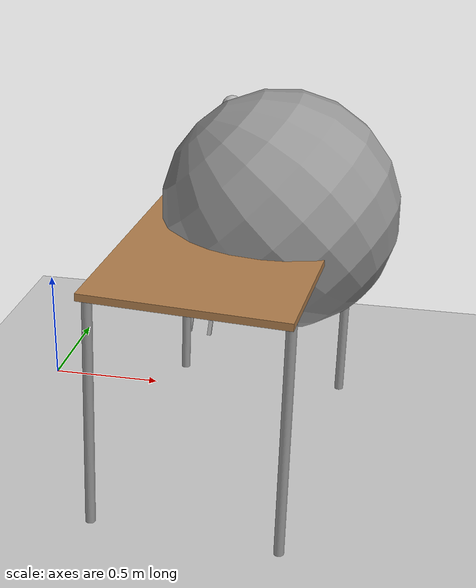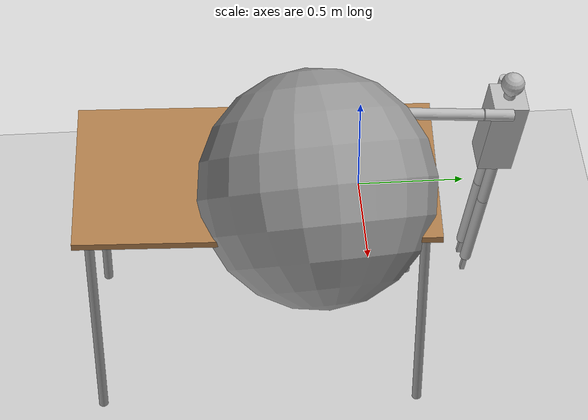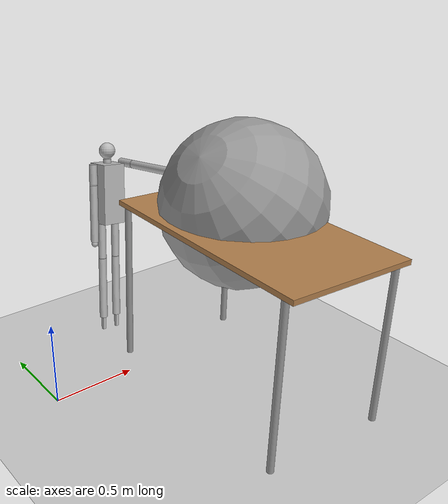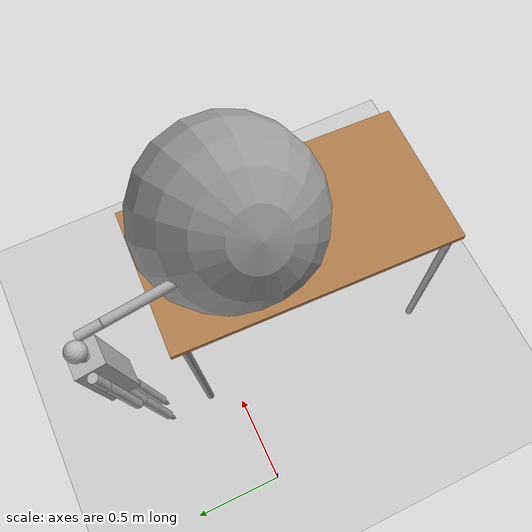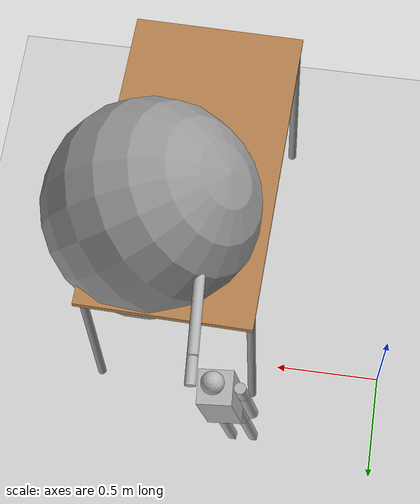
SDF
<sdf version="1.6">
 <world name="default">
  <light name="sun" type="directional">
   <pose>0 0 10 0 -0 0</pose>
   <diffuse>0.8 0.8 0.8 1</diffuse>
   <specular>0.2 0.2 0.2 1</specular>
   <attenuation>
    <range>1000</range>
    <constant>0.9</constant>
    <linear>0.01</linear>
    <quadratic>0.001</quadratic>
   </attenuation>
   <direction>-0.5 0.1 -0.9</direction>
  </light>
  <model name="ground_plane">
   <static>1</static>
   <link name="link">
    <collision name="collision">
     <geometry><plane><normal>0 0 1</normal><size>100 100</size></plane></geometry>
     <surface><friction><ode><mu>100</mu><mu2>50</mu2></ode></friction></surface>
    </collision>
    <visual name="visual">
     <cast_shadows>0</cast_shadows>
     <geometry><plane><normal>0 0 1</normal><size>100 100</size></plane></geometry>
     <material>
      <script><uri>file://media/materials/scripts/gazebo.material</uri><name>Gazebo/Grey</name></script>
     </material>
    </visual>
   </link>
  </model>
  <gravity>0 0 -9.8</gravity>
  <magnetic_field>6e-06 2.3e-05 -4.2e-05</magnetic_field>
  <atmosphere type="adiabatic"/>
  <physics name="default_physics" default="0" type="ode">
   <max_step_size>0.001</max_step_size>
   <real_time_factor>1</real_time_factor>
   <real_time_update_rate>1000</real_time_update_rate>
  </physics>
  <scene><ambient>0.4 0.4 0.4 1</ambient><background>0.7 0.7 0.7 1</background><shadows>1</shadows></scene>
  <spherical_coordinates>
   <surface_model>EARTH_WGS84</surface_model>
   <latitude_deg>0</latitude_deg>
   <longitude_deg>0</longitude_deg>
   <elevation>0</elevation>
   <heading_deg>0</heading_deg>
  </spherical_coordinates>
  <model name="human">
   <link name="head">
    <inertial>
     <pose>0.7 0.5 0.770549 0 -0 0</pose>
     <mass>102.5</mass>
     <inertia>
      <ixx>8.60748</ixx>
      <ixy>0</ixy>
      <ixz>2.13163e-14</ixz>
      <iyy>8.71998</iyy>
      <iyz>0</iyz>
      <izz>0.1125</izz>
     </inertia>
    </inertial>
    <collision name="head_collision"><geometry><sphere><radius>0.05</radius></sphere></geometry></collision>
    <collision name="head_fixed_joint_lump__neck_collision_1">
     <geometry><cylinder><length>0.025</length><radius>0.025</radius></cylinder></geometry>
    </collision>
    <collision name="head_fixed_joint_lump__torso_collision_2">
     <geometry><box><size>0.15 0.15 0.375</size></box></geometry>
    </collision>
    <collision name="head_fixed_joint_lump__left_hip_collision_3">
     <geometry><cylinder><length>0.225</length><radius>0.025</radius></cylinder></geometry>
    </collision>
    <collision name="head_fixed_joint_lump__left_knee_collision_4">
     <geometry><cylinder><length>0.4</length><radius>0.025</radius></cylinder></geometry>
    </collision>
    <collision name="head_fixed_joint_lump__left_foot_collision_5">
     <geometry><box><size>0.02 0.02 0.08</size></box></geometry>
    </collision>
    <collision name="head_fixed_joint_lump__right_hip_collision_6">
     <geometry><cylinder><length>0.225</length><radius>0.025</radius></cylinder></geometry>
    </collision>
    <collision name="head_fixed_joint_lump__right_knee_collision_7">
     <geometry><cylinder><length>0.4</length><radius>0.025</radius></cylinder></geometry>
    </collision>
    <collision name="head_fixed_joint_lump__right_foot_collision_8">
     <geometry><box><size>0.02 0.02 0.08</size></box></geometry>
    </collision>
    <visual name="head_visual">
     <pose>0.7 0.5 1.225 0 -0 0</pose>
     <geometry><sphere><radius>0.05</radius></sphere></geometry>
    </visual>
    <visual name="head_fixed_joint_lump__neck_visual_1">
     <pose>0.7 0.5 1.1625 0 -0 0</pose>
     <geometry><cylinder><length>0.025</length><radius>0.025</radius></cylinder></geometry>
    </visual>
    <visual name="head_fixed_joint_lump__torso_visual_2">
     <pose>0.7 0.5 0.96 0 -0 0</pose>
     <geometry><box><size>0.15 0.15 0.375</size></box></geometry>
    </visual>
    <visual name="head_fixed_joint_lump__left_hip_visual_3">
     <pose>0.65 0.5 0.655 0 -0 0</pose>
     <geometry><cylinder><length>0.225</length><radius>0.025</radius></cylinder></geometry>
    </visual>
    <visual name="head_fixed_joint_lump__left_knee_visual_4">
     <pose>0.65 0.5 0.34 0 -0 0</pose>
     <geometry><cylinder><length>0.4</length><radius>0.025</radius></cylinder></geometry>
    </visual>
    <visual name="head_fixed_joint_lump__left_foot_visual_5">
     <pose>0.65 0.5 0.095 0 -0 0</pose>
     <geometry><box><size>0.02 0.02 0.08</size></box></geometry>
    </visual>
    <visual name="head_fixed_joint_lump__right_hip_visual_6">
     <pose>0.75 0.5 0.655 0 -0 0</pose>
     <geometry><cylinder><length>0.225</length><radius>0.025</radius></cylinder></geometry>
    </visual>
    <visual name="head_fixed_joint_lump__right_knee_visual_7">
     <pose>0.75 0.5 0.34 0 -0 0</pose>
     <geometry><cylinder><length>0.4</length><radius>0.025</radius></cylinder></geometry>
    </visual>
    <visual name="head_fixed_joint_lump__right_foot_visual_8">
     <pose>0.75 0.5 0.095 0 -0 0</pose>
     <geometry><box><size>0.02 0.02 0.08</size></box></geometry>
    </visual>
   </link>
   <joint name="fixed" type="fixed"><child>head</child><parent>world</parent></joint>
   <link name="left_shoulder">
    <pose>0.595 0.5 1.1475 0 -0 0</pose>
    <inertial>
     <pose>0 0 -0.0625 0 -0 0</pose>
     <mass>12.5</mass>
     <inertia><ixx>0</ixx><ixy>0</ixy><ixz>0</ixz><iyy>0</iyy><iyz>0</iyz><izz>0</izz></inertia>
    </inertial>
    <collision name="left_shoulder_collision">
     <geometry><cylinder><length>0.125</length><radius>0.025</radius></cylinder></geometry>
    </collision>
    <visual name="left_shoulder_visual">
     <pose>0 0 -0.0625 0 -0 0</pose>
     <geometry><cylinder><length>0.125</length><radius>0.025</radius></cylinder></geometry>
    </visual>
   </link>
   <joint name="left_shoulder_1" type="revolute">
    <child>left_shoulder</child>
    <parent>head</parent>
    <axis>
     <xyz>1 0 0</xyz>
     <limit><lower>-3.14</lower><upper>3.14</upper><effort>30</effort><velocity>1</velocity></limit>
     <dynamics><spring_reference>0</spring_reference><spring_stiffness>0</spring_stiffness></dynamics>
     <use_parent_model_frame>1</use_parent_model_frame>
    </axis>
   </joint>
   <link name="left_elbow">
    <pose>0.595 0.5 1.0225 0 -0 0</pose>
    <inertial>
     <pose>0 0 -0.23375 0 -0 0</pose>
     <mass>10</mass>
     <inertia><ixx>0.0712969</ixx><ixy>0</ixy><ixz>0</ixz><iyy>0.0712969</iyy><iyz>0</iyz><izz>0</izz></inertia>
    </inertial>
    <collision name="left_elbow_collision">
     <geometry><cylinder><length>0.36</length><radius>0.025</radius></cylinder></geometry>
    </collision>
    <collision name="left_elbow_fixed_joint_lump__left_hand_collision_1">
     <pose>0 0 -0.36 0 -0 0</pose>
     <geometry><sphere><radius>0.02</radius></sphere></geometry>
    </collision>
    <visual name="left_elbow_visual">
     <pose>0 0 -0.185 0 -0 0</pose>
     <geometry><cylinder><length>0.36</length><radius>0.025</radius></cylinder></geometry>
    </visual>
    <visual name="left_elbow_fixed_joint_lump__left_hand_visual_1">
     <pose>0 0 -0.38 0 -0 0</pose>
     <geometry><sphere><radius>0.02</radius></sphere></geometry>
    </visual>
   </link>
   <joint name="left_elbow_1" type="revolute">
    <child>left_elbow</child>
    <parent>left_shoulder</parent>
    <axis>
     <xyz>1 0 0</xyz>
     <limit><lower>-1.57</lower><upper>0</upper><effort>30</effort><velocity>1</velocity></limit>
     <dynamics><spring_reference>0</spring_reference><spring_stiffness>0</spring_stiffness></dynamics>
     <use_parent_model_frame>1</use_parent_model_frame>
    </axis>
   </joint>
   <link name="right_shoulder">
    <pose>0.805 0.5 1.1475 -1.57 0 0</pose>
    <inertial>
     <pose>0 0 -0.0625 0 -0 0</pose>
     <mass>12.5</mass>
     <inertia><ixx>0</ixx><ixy>0</ixy><ixz>0</ixz><iyy>0</iyy><iyz>0</iyz><izz>0</izz></inertia>
    </inertial>
    <collision name="right_shoulder_collision">
     <geometry><cylinder><length>0.125</length><radius>0.025</radius></cylinder></geometry>
    </collision>
    <visual name="right_shoulder_visual">
     <pose>0 0 -0.0625 0 -0 0</pose>
     <geometry><cylinder><length>0.125</length><radius>0.025</radius></cylinder></geometry>
    </visual>
   </link>
   <joint name="right_shoulder_1" type="revolute">
    <child>right_shoulder</child>
    <parent>head</parent>
    <axis>
     <xyz>1 0 0</xyz>
     <limit><lower>-3.14</lower><upper>3.14</upper><effort>30</effort><velocity>1</velocity></limit>
     <dynamics><spring_reference>0</spring_reference><spring_stiffness>0</spring_stiffness></dynamics>
     <use_parent_model_frame>1</use_parent_model_frame>
    </axis>
   </joint>
   <link name="right_elbow">
    <pose>0.805 0.375 1.1474 -1.57 0 0</pose>
    <inertial>
     <pose>0 0 -0.23375 0 -0 0</pose>
     <mass>10</mass>
     <inertia><ixx>0.0712969</ixx><ixy>0</ixy><ixz>0</ixz><iyy>0.0712969</iyy><iyz>0</iyz><izz>0</izz></inertia>
    </inertial>
    <collision name="right_elbow_collision">
     <geometry><cylinder><length>0.36</length><radius>0.025</radius></cylinder></geometry>
    </collision>
    <collision name="right_elbow_fixed_joint_lump__right_hand_collision_1">
     <pose>0 0 -0.36 0 -0 0</pose>
     <geometry><sphere><radius>0.02</radius></sphere></geometry>
    </collision>
    <visual name="right_elbow_visual">
     <pose>0 0 -0.185 0 -0 0</pose>
     <geometry><cylinder><length>0.36</length><radius>0.025</radius></cylinder></geometry>
    </visual>
    <visual name="right_elbow_fixed_joint_lump__right_hand_visual_1">
     <pose>0 0 -0.38 0 -0 0</pose>
     <geometry><sphere><radius>0.02</radius></sphere></geometry>
    </visual>
   </link>
   <joint name="right_elbow_1" type="revolute">
    <child>right_elbow</child>
    <parent>right_shoulder</parent>
    <axis>
     <xyz>1 0 0</xyz>
     <limit><lower>-1.57</lower><upper>0</upper><effort>30</effort><velocity>1</velocity></limit>
     <dynamics><spring_reference>0</spring_reference><spring_stiffness>0</spring_stiffness></dynamics>
     <use_parent_model_frame>1</use_parent_model_frame>
    </axis>
   </joint>
   <pose>-0.057675 -0.118013 0.169724 -0.123699 0.122181 0.036346</pose>
  </model>
  <model name="table">
   <static>1</static>
   <link name="link">
    <collision name="surface">
     <pose>0 0 1 0 -0 0</pose>
     <geometry><box><size>1.5 0.8 0.03</size></box></geometry>
     <surface><friction><ode><mu>0.6</mu><mu2>0.6</mu2></ode></friction></surface>
    </collision>
    <visual name="visual1">
     <pose>0 0 1 0 -0 0</pose>
     <geometry><box><size>1.5 0.8 0.03</size></box></geometry>
     <material>
      <script><uri>file://media/materials/scripts/gazebo.material</uri><name>Gazebo/Wood</name></script>
     </material>
    </visual>
    <collision name="front_left_leg">
     <pose>0.68 0.38 0.5 0 -0 0</pose>
     <geometry><cylinder><radius>0.02</radius><length>1</length></cylinder></geometry>
    </collision>
    <visual name="front_left_leg">
     <pose>0.68 0.38 0.5 0 -0 0</pose>
     <geometry><cylinder><radius>0.02</radius><length>1</length></cylinder></geometry>
     <material>
      <script><uri>file://media/materials/scripts/gazebo.material</uri><name>Gazebo/Grey</name></script>
     </material>
    </visual>
    <collision name="front_right_leg">
     <pose>0.68 -0.38 0.5 0 -0 0</pose>
     <geometry><cylinder><radius>0.02</radius><length>1</length></cylinder></geometry>
    </collision>
    <visual name="front_right_leg">
     <pose>0.68 -0.38 0.5 0 -0 0</pose>
     <geometry><cylinder><radius>0.02</radius><length>1</length></cylinder></geometry>
     <material>
      <script><uri>file://media/materials/scripts/gazebo.material</uri><name>Gazebo/Grey</name></script>
     </material>
    </visual>
    <collision name="back_right_leg">
     <pose>-0.68 -0.38 0.5 0 -0 0</pose>
     <geometry><cylinder><radius>0.02</radius><length>1</length></cylinder></geometry>
    </collision>
    <visual name="back_right_leg">
     <pose>-0.68 -0.38 0.5 0 -0 0</pose>
     <geometry><cylinder><radius>0.02</radius><length>1</length></cylinder></geometry>
     <material>
      <script><uri>file://media/materials/scripts/gazebo.material</uri><name>Gazebo/Grey</name></script>
     </material>
    </visual>
    <collision name="back_left_leg">
     <pose>-0.68 0.38 0.5 0 -0 0</pose>
     <geometry><cylinder><radius>0.02</radius><length>1</length></cylinder></geometry>
    </collision>
    <visual name="back_left_leg">
     <pose>-0.68 0.38 0.5 0 -0 0</pose>
     <geometry><cylinder><radius>0.02</radius><length>1</length></cylinder></geometry>
     <material>
      <script><uri>file://media/materials/scripts/gazebo.material</uri><name>Gazebo/Grey</name></script>
     </material>
    </visual>
   </link>
   <pose>0.962947 -0.533298 0.005473 0.030611 -0 1.53369</pose>
  </model>
  <model name="unit_sphere">
   <pose>1.14033 -0.289153 1.0431 -3.09665 0.772367 -2.99587</pose>
   <link name="link">
    <inertial>
     <mass>1</mass>
     <inertia><ixx>0.1</ixx><ixy>0</ixy><ixz>0</ixz><iyy>0.1</iyy><iyz>0</iyz><izz>0.1</izz></inertia>
    </inertial>
    <collision name="collision"><geometry><sphere><radius>0.500003</radius></sphere></geometry></collision>
    <visual name="visual">
     <geometry><sphere><radius>0.500003</radius></sphere></geometry>
     <material>
      <script><name>Gazebo/Grey</name><uri>file://media/materials/scripts/gazebo.material</uri></script>
     </material>
    </visual>
   </link>
  </model>
 </world>
</sdf>
